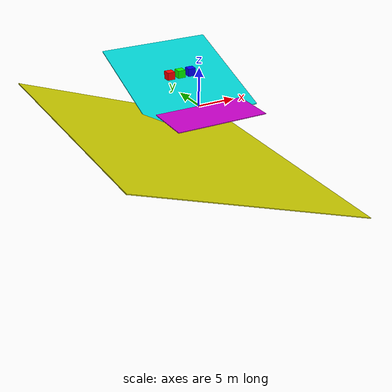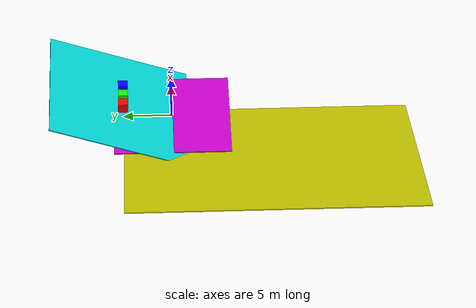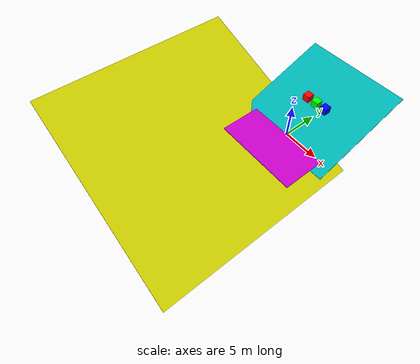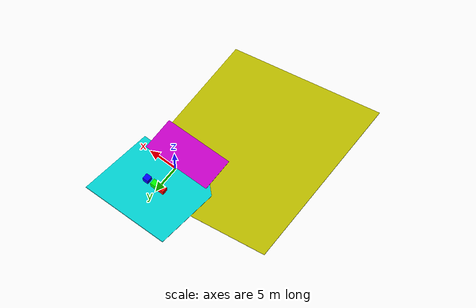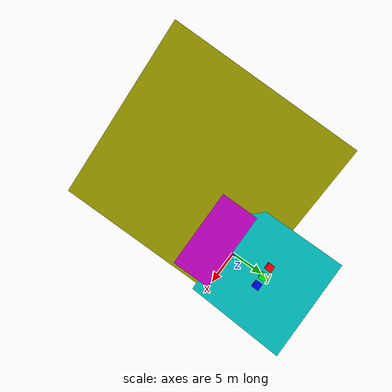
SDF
<?xml version="1.0" ?>
<sdf version="1.6">
  <world name="shapes">
    <physics name="1ms" type="ignored">
      <max_step_size>0.001</max_step_size>
      <real_time_factor>1.0</real_time_factor>
    </physics>
    <plugin
      filename="ignition-gazebo-physics-system"
      name="ignition::gazebo::systems::Physics">
    </plugin>
    <plugin
      filename="ignition-gazebo-user-commands-system"
      name="ignition::gazebo::systems::UserCommands">
    </plugin>
    <plugin
      filename="ignition-gazebo-scene-broadcaster-system"
      name="ignition::gazebo::systems::SceneBroadcaster">
    </plugin>

    <scene>
      <ambient>1.0 1.0 1.0</ambient>
      <background>0.8 0.8 0.8</background>
    </scene>

    <light type="directional" name="sun">
      <cast_shadows>true</cast_shadows>
      <pose>0 0 10 0 0 0</pose>
      <diffuse>0.8 0.8 0.8 1</diffuse>
      <specular>0.8 0.8 0.8 1</specular>
      <attenuation>
        <range>1000</range>
        <constant>0.9</constant>
        <linear>0.01</linear>
        <quadratic>0.001</quadratic>
      </attenuation>
      <direction>-0.5 0.1 -0.9</direction>
    </light>

    <model name="tilted_box_fixed">
      <pose>0 5.4 2 0.35 0 0</pose>
      <static>true</static>
      <link name="tilted_box_link">
        <collision name="collision">
	  <geometry>
            <box>
              <size>15 15 0.1</size>
            </box>
          </geometry>
        </collision>
        <visual name="visual">
	  <geometry>
            <box>
              <size>15 15 0.1</size>
            </box>
	  </geometry>
          <material>
            <ambient>0. 0.8 0.8 1</ambient>
            <diffuse>0. 0.8 0.8 1</diffuse>
            <specular>0. 0.8 0.8 1</specular>
          </material>
        </visual>
      </link>
    </model>

    <model name="tilted_box_fixed_2">
      <pose>-7 -10 0 0 0.35 0</pose>
      <static>true</static>
      <link name="tilted_box_link">
        <collision name="collision">
	  <geometry>
            <box>
              <size>30 30 0.1</size>
            </box>
          </geometry>
        </collision>
        <visual name="visual">
	  <geometry>
            <box>
              <size>30 30 0.1</size>
            </box>
	  </geometry>
          <material>
            <ambient>0.8 0.8 0. 1</ambient>
            <diffuse>0.8 0.8 0. 1</diffuse>
            <specular>0.8 0.8 0. 1</specular>
          </material>
        </visual>
      </link>
    </model>

    <model name="ground_plane">
      <pose>0 0 0 0 0 0</pose>
      <static>true</static>
      <link name="ground_plane_link">
        <collision name="collision">
          <geometry>
	    <box>
	      <size>12 12 0.1</size>
	    </box>
          </geometry>
        </collision>
        <visual name="visual">
          <geometry>
	      <box>
		<size>12 12 0.1</size>
	      </box>
          </geometry>
          <material>
            <ambient>0.8 0. 0.8 1</ambient>
            <diffuse>0.8 0. 0.8 1</diffuse>
            <specular>0.8 0. 0.8 1</specular>
          </material>
        </visual>
      </link>
    </model>

    <model name="green_box">
      <pose>0 5 2.7 0 0 0</pose>
      <link name="box_link">
        <inertial>
          <inertia>
            <ixx>1</ixx>
            <ixy>0</ixy>
            <ixz>0</ixz>
            <iyy>1</iyy>
            <iyz>0</iyz>
            <izz>1</izz>
          </inertia>
          <mass>1.0</mass>
        </inertial>
        <collision name="box_collision">
          <geometry>
            <box>
              <size>1 1 1</size>
            </box>
          </geometry>
          <surface>
              <friction>
                  <ode>
                      <mu>0</mu>
                      <mu2>0.5</mu2>
                  </ode>
              </friction>
          </surface>
        </collision>

        <visual name="box_visual">
          <geometry>
            <box>
              <size>1 1 1</size>
            </box>
          </geometry>
          <material>
            <ambient>0 1 0 1</ambient>
            <diffuse>0 1 0 1</diffuse>
            <specular>0 1 0 1</specular>
          </material>
        </visual>
      </link>
    </model>

    <model name="red_box">
      <pose>-1.5 5 2.7 0 0 0</pose>
      <link name="box_link">
        <inertial>
          <inertia>
            <ixx>1</ixx>
            <ixy>0</ixy>
            <ixz>0</ixz>
            <iyy>1</iyy>
            <iyz>0</iyz>
            <izz>1</izz>
          </inertia>
          <mass>1.0</mass>
        </inertial>
        <collision name="box_collision">
          <geometry>
            <box>
              <size>1 1 1</size>
            </box>
          </geometry>
          <surface>
              <friction>
                  <ode>
                      <mu>0.5</mu>
                      <mu2>0</mu2>
                  </ode>
              </friction>
          </surface>
        </collision>

        <visual name="box_visual">
          <geometry>
            <box>
              <size>1 1 1</size>
            </box>
          </geometry>
          <material>
            <ambient>1 0 0 1</ambient>
            <diffuse>1 0 0 1</diffuse>
            <specular>1 0 0 1</specular>
          </material>
        </visual>
      </link>
    </model>

    <model name="blue_box">
      <pose>1.5 5 2.7 0 0 0</pose>
      <link name="box_link">
        <inertial>
          <inertia>
            <ixx>1</ixx>
            <ixy>0</ixy>
            <ixz>0</ixz>
            <iyy>1</iyy>
            <iyz>0</iyz>
            <izz>1</izz>
          </inertia>
          <mass>1.0</mass>
        </inertial>
        <collision name="box_collision">
          <geometry>
            <box>
              <size>1 1 1</size>
            </box>
          </geometry>
          <surface>
              <friction>
                  <ode>
                      <mu>0.3</mu>
                      <mu2>0.3</mu2>
                  </ode>
              </friction>
          </surface>
        </collision>

        <visual name="box_visual">
          <geometry>
            <box>
              <size>1 1 1</size>
            </box>
          </geometry>
          <material>
            <ambient>0 0 1 1</ambient>
            <diffuse>0 0 1 1</diffuse>
            <specular>0 0 1 1</specular>
          </material>
        </visual>
      </link>
    </model>

  </world>
</sdf>
